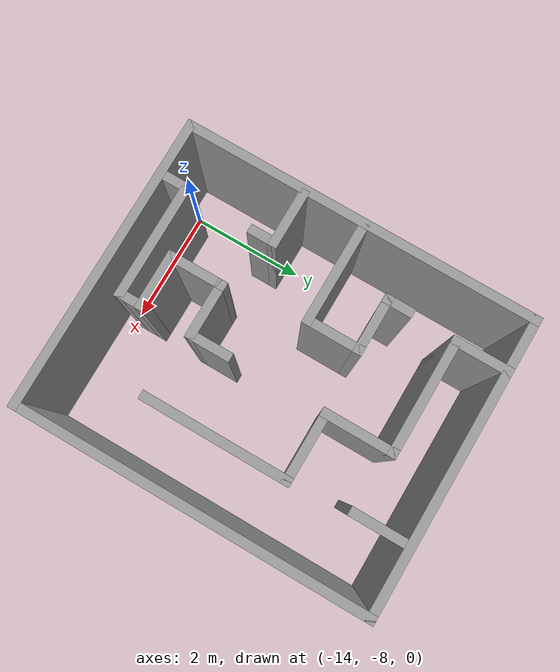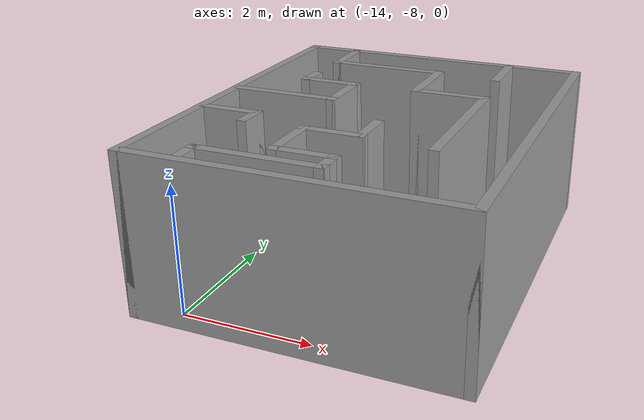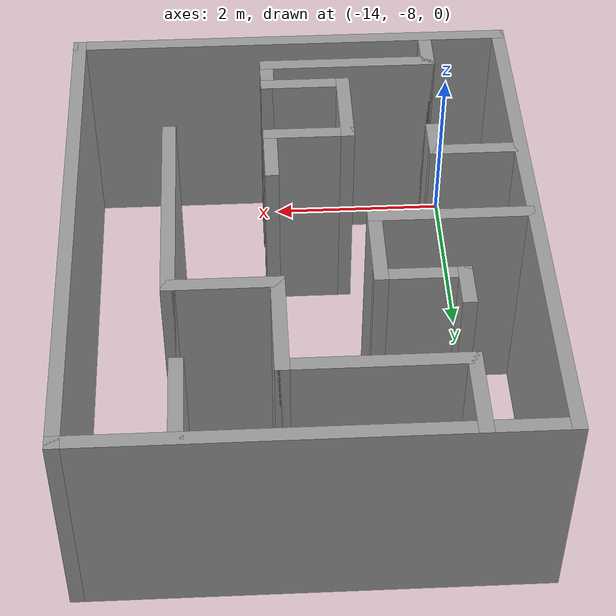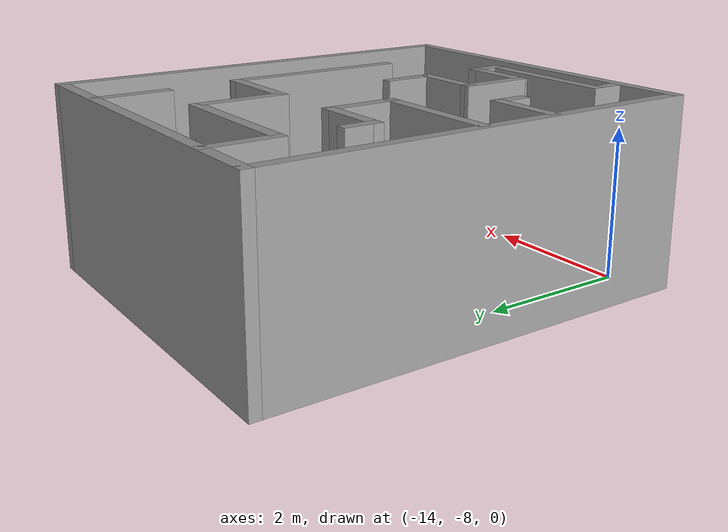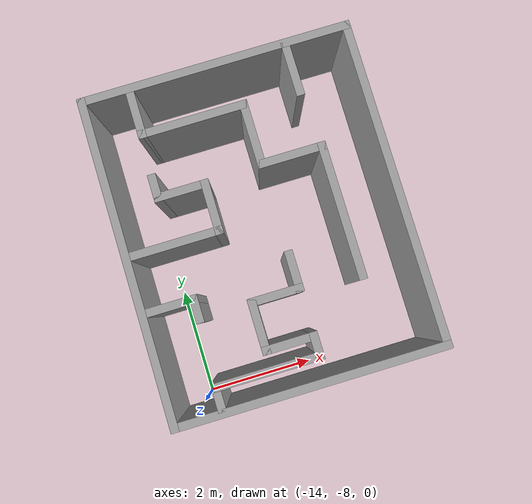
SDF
<?xml version='1.0'?>
<sdf version='1.6'>
  <model name='building1'>
    <pose frame=''>-12.175 -5.325 0 0 -0 0</pose>
    <link name='Wall_0'>
      <collision name='Wall_0_Collision'>
        <geometry>
          <box>
            <size>6 0.15 2.5</size>
          </box>
        </geometry>
        <pose frame=''>0 0 1.25 0 -0 0</pose>
      </collision>
      <visual name='Wall_0_Visual'>
        <pose frame=''>0 0 1.25 0 -0 0</pose>
        <geometry>
          <box>
            <size>6 0.15 2.5</size>
          </box>
        </geometry>
        <material>
          <script>
            <uri>file://media/materials/scripts/gazebo.material</uri>
            <name>Gazebo/Grey</name>
          </script>
          <ambient>1 1 1 1</ambient>
        </material>
        <meta>
          <layer>0</layer>
        </meta>
      </visual>
      <pose frame=''>-2.425 0 0 0 0 -1.5708</pose>
    </link>
    <link name='Wall_1'>
      <collision name='Wall_1_Collision'>
        <geometry>
          <box>
            <size>5 0.15 2.5</size>
          </box>
        </geometry>
        <pose frame=''>0 0 1.25 0 -0 0</pose>
      </collision>
      <visual name='Wall_1_Visual'>
        <pose frame=''>0 0 1.25 0 -0 0</pose>
        <geometry>
          <box>
            <size>5 0.15 2.5</size>
          </box>
        </geometry>
        <material>
          <script>
            <uri>file://media/materials/scripts/gazebo.material</uri>
            <name>Gazebo/Grey</name>
          </script>
          <ambient>1 1 1 1</ambient>
        </material>
        <meta>
          <layer>0</layer>
        </meta>
      </visual>
      <pose frame=''>0 -2.925 0 0 -0 0</pose>
    </link>
    <link name='Wall_16'>
      <collision name='Wall_16_Collision'>
        <geometry>
          <box>
            <size>0.5 0.15 2.5</size>
          </box>
        </geometry>
        <pose frame=''>0 0 1.25 0 -0 0</pose>
      </collision>
      <visual name='Wall_16_Visual'>
        <pose frame=''>0 0 1.25 0 -0 0</pose>
        <geometry>
          <box>
            <size>0.5 0.15 2.5</size>
          </box>
        </geometry>
        <material>
          <script>
            <uri>file://media/materials/scripts/gazebo.material</uri>
            <name>Gazebo/Grey</name>
          </script>
          <ambient>1 1 1 1</ambient>
        </material>
        <meta>
          <layer>0</layer>
        </meta>
      </visual>
      <pose frame=''>-1.565 -2.65 0 0 0 -1.5708</pose>
    </link>
    <link name='Wall_18'>
      <collision name='Wall_18_Collision'>
        <geometry>
          <box>
            <size>1.25 0.15 2.5</size>
          </box>
        </geometry>
        <pose frame=''>0 0 1.25 0 -0 0</pose>
      </collision>
      <visual name='Wall_18_Visual'>
        <pose frame=''>0 0 1.25 0 -0 0</pose>
        <geometry>
          <box>
            <size>1.25 0.15 2.5</size>
          </box>
        </geometry>
        <material>
          <script>
            <uri>file://media/materials/scripts/gazebo.material</uri>
            <name>Gazebo/Grey</name>
          </script>
          <ambient>1 1 1 1</ambient>
        </material>
        <meta>
          <layer>0</layer>
        </meta>
      </visual>
      <pose frame=''>0.285 1.525 0 0 0 -1.5708</pose>
    </link>
    <link name='Wall_19'>
      <collision name='Wall_19_Collision'>
        <geometry>
          <box>
            <size>1.25 0.15 2.5</size>
          </box>
        </geometry>
        <pose frame=''>0 0 1.25 0 -0 0</pose>
      </collision>
      <visual name='Wall_19_Visual'>
        <pose frame=''>0 0 1.25 0 -0 0</pose>
        <geometry>
          <box>
            <size>1.25 0.15 2.5</size>
          </box>
        </geometry>
        <material>
          <script>
            <uri>file://media/materials/scripts/gazebo.material</uri>
            <name>Gazebo/Grey</name>
          </script>
          <ambient>1 1 1 1</ambient>
        </material>
        <meta>
          <layer>0</layer>
        </meta>
      </visual>
      <pose frame=''>0.835 0.975 0 0 -0 0</pose>
    </link>
    <link name='Wall_2'>
      <collision name='Wall_2_Collision'>
        <geometry>
          <box>
            <size>6 0.15 2.5</size>
          </box>
        </geometry>
        <pose frame=''>0 0 1.25 0 -0 0</pose>
      </collision>
      <visual name='Wall_2_Visual'>
        <pose frame=''>0 0 1.25 0 -0 0</pose>
        <geometry>
          <box>
            <size>6 0.15 2.5</size>
          </box>
        </geometry>
        <material>
          <script>
            <uri>file://media/materials/scripts/gazebo.material</uri>
            <name>Gazebo/Grey</name>
          </script>
          <ambient>1 1 1 1</ambient>
        </material>
        <meta>
          <layer>0</layer>
        </meta>
      </visual>
      <pose frame=''>2.425 0 0 0 -0 1.5708</pose>
    </link>
    <link name='Wall_20'>
      <collision name='Wall_20_Collision'>
        <geometry>
          <box>
            <size>2.5 0.15 2.5</size>
          </box>
        </geometry>
        <pose frame=''>0 0 1.25 0 -0 0</pose>
      </collision>
      <visual name='Wall_20_Visual'>
        <pose frame=''>0 0 1.25 0 -0 0</pose>
        <geometry>
          <box>
            <size>2.5 0.15 2.5</size>
          </box>
        </geometry>
        <material>
          <script>
            <uri>file://media/materials/scripts/gazebo.material</uri>
            <name>Gazebo/Grey</name>
          </script>
          <ambient>1 1 1 1</ambient>
        </material>
        <meta>
          <layer>0</layer>
        </meta>
      </visual>
      <pose frame=''>1.385 -0.2 0 0 0 -1.5708</pose>
    </link>
    <link name='Wall_22'>
      <collision name='Wall_22_Collision'>
        <geometry>
          <box>
            <size>1.75 0.15 2.5</size>
          </box>
        </geometry>
        <pose frame=''>0 0 1.25 0 -0 0</pose>
      </collision>
      <visual name='Wall_22_Visual'>
        <pose frame=''>0 0 1.25 0 -0 0</pose>
        <geometry>
          <box>
            <size>1.75 0.15 2.5</size>
          </box>
        </geometry>
        <material>
          <script>
            <uri>file://media/materials/scripts/gazebo.material</uri>
            <name>Gazebo/Grey</name>
          </script>
          <ambient>1 1 1 1</ambient>
        </material>
        <meta>
          <layer>0</layer>
        </meta>
      </visual>
      <pose frame=''>-1.555 0.075 0 0 -0 0</pose>
    </link>
    <link name='Wall_23'>
      <collision name='Wall_23_Collision'>
        <geometry>
          <box>
            <size>1 0.15 2.5</size>
          </box>
        </geometry>
        <pose frame=''>0 0 1.25 0 -0 0</pose>
      </collision>
      <visual name='Wall_23_Visual'>
        <pose frame=''>0 0 1.25 0 -0 0</pose>
        <geometry>
          <box>
            <size>1 0.15 2.5</size>
          </box>
        </geometry>
        <material>
          <script>
            <uri>file://media/materials/scripts/gazebo.material</uri>
            <name>Gazebo/Grey</name>
          </script>
          <ambient>1 1 1 1</ambient>
        </material>
        <meta>
          <layer>0</layer>
        </meta>
      </visual>
      <pose frame=''>-0.755 0.5 0 0 -0 1.5708</pose>
    </link>
    <link name='Wall_24'>
      <collision name='Wall_24_Collision'>
        <geometry>
          <box>
            <size>1 0.15 2.5</size>
          </box>
        </geometry>
        <pose frame=''>0 0 1.25 0 -0 0</pose>
      </collision>
      <visual name='Wall_24_Visual'>
        <pose frame=''>0 0 1.25 0 -0 0</pose>
        <geometry>
          <box>
            <size>1 0.15 2.5</size>
          </box>
        </geometry>
        <material>
          <script>
            <uri>file://media/materials/scripts/gazebo.material</uri>
            <name>Gazebo/Grey</name>
          </script>
          <ambient>1 1 1 1</ambient>
        </material>
        <meta>
          <layer>0</layer>
        </meta>
      </visual>
      <pose frame=''>-1.18 0.925 0 0 -0 3.14159</pose>
    </link>
    <link name='Wall_25'>
      <collision name='Wall_25_Collision'>
        <geometry>
          <box>
            <size>0.5 0.15 2.5</size>
          </box>
        </geometry>
        <pose frame=''>0 0 1.25 0 -0 0</pose>
      </collision>
      <visual name='Wall_25_Visual'>
        <pose frame=''>0 0 1.25 0 -0 0</pose>
        <geometry>
          <box>
            <size>0.5 0.15 2.5</size>
          </box>
        </geometry>
        <material>
          <script>
            <uri>file://media/materials/scripts/gazebo.material</uri>
            <name>Gazebo/Grey</name>
          </script>
          <ambient>1 1 1 1</ambient>
        </material>
        <meta>
          <layer>0</layer>
        </meta>
      </visual>
      <pose frame=''>-1.605 1.1 0 0 -0 1.5708</pose>
    </link>
    <link name='Wall_27'>
      <collision name='Wall_27_Collision'>
        <geometry>
          <box>
            <size>2 0.15 2.5</size>
          </box>
        </geometry>
        <pose frame=''>0 0 1.25 0 -0 0</pose>
      </collision>
      <visual name='Wall_27_Visual'>
        <pose frame=''>0 0 1.25 0 -0 0</pose>
        <geometry>
          <box>
            <size>2 0.15 2.5</size>
          </box>
        </geometry>
        <material>
          <script>
            <uri>file://media/materials/scripts/gazebo.material</uri>
            <name>Gazebo/Grey</name>
          </script>
          <ambient>1 1 1 1</ambient>
        </material>
        <meta>
          <layer>0</layer>
        </meta>
      </visual>
      <pose frame=''>-0.639999 -2.475 0 0 -0 0</pose>
    </link>
    <link name='Wall_28'>
      <collision name='Wall_28_Collision'>
        <geometry>
          <box>
            <size>0.5 0.15 2.5</size>
          </box>
        </geometry>
        <pose frame=''>0 0 1.25 0 -0 0</pose>
      </collision>
      <visual name='Wall_28_Visual'>
        <pose frame=''>0 0 1.25 0 -0 0</pose>
        <geometry>
          <box>
            <size>0.5 0.15 2.5</size>
          </box>
        </geometry>
        <material>
          <script>
            <uri>file://media/materials/scripts/gazebo.material</uri>
            <name>Gazebo/Grey</name>
          </script>
          <ambient>1 1 1 1</ambient>
        </material>
        <meta>
          <layer>0</layer>
        </meta>
      </visual>
      <pose frame=''>0.285 -2.3 0 0 -0 1.5708</pose>
    </link>
    <link name='Wall_29'>
      <collision name='Wall_29_Collision'>
        <geometry>
          <box>
            <size>1 0.15 2.5</size>
          </box>
        </geometry>
        <pose frame=''>0 0 1.25 0 -0 0</pose>
      </collision>
      <visual name='Wall_29_Visual'>
        <pose frame=''>0 0 1.25 0 -0 0</pose>
        <geometry>
          <box>
            <size>1 0.15 2.5</size>
          </box>
        </geometry>
        <material>
          <script>
            <uri>file://media/materials/scripts/gazebo.material</uri>
            <name>Gazebo/Grey</name>
          </script>
          <ambient>1 1 1 1</ambient>
        </material>
        <meta>
          <layer>0</layer>
        </meta>
      </visual>
      <pose frame=''>-0.139999 -2.125 0 0 -0 3.14159</pose>
    </link>
    <link name='Wall_3'>
      <collision name='Wall_3_Collision'>
        <geometry>
          <box>
            <size>5 0.15 2.5</size>
          </box>
        </geometry>
        <pose frame=''>0 0 1.25 0 -0 0</pose>
      </collision>
      <visual name='Wall_3_Visual'>
        <pose frame=''>0 0 1.25 0 -0 0</pose>
        <geometry>
          <box>
            <size>5 0.15 2.5</size>
          </box>
        </geometry>
        <material>
          <script>
            <uri>file://media/materials/scripts/gazebo.material</uri>
            <name>Gazebo/Grey</name>
          </script>
          <ambient>1 1 1 1</ambient>
        </material>
        <meta>
          <layer>0</layer>
        </meta>
      </visual>
      <pose frame=''>0 2.925 0 0 -0 3.14159</pose>
    </link>
    <link name='Wall_30'>
      <collision name='Wall_30_Collision'>
        <geometry>
          <box>
            <size>1 0.15 2.5</size>
          </box>
        </geometry>
        <pose frame=''>0 0 1.25 0 -0 0</pose>
      </collision>
      <visual name='Wall_30_Visual'>
        <pose frame=''>0 0 1.25 0 -0 0</pose>
        <geometry>
          <box>
            <size>1 0.15 2.5</size>
          </box>
        </geometry>
        <material>
          <script>
            <uri>file://media/materials/scripts/gazebo.material</uri>
            <name>Gazebo/Grey</name>
          </script>
          <ambient>1 1 1 1</ambient>
        </material>
        <meta>
          <layer>0</layer>
        </meta>
      </visual>
      <pose frame=''>-0.565 -1.7 0 0 -0 1.5708</pose>
    </link>
    <link name='Wall_31'>
      <collision name='Wall_31_Collision'>
        <geometry>
          <box>
            <size>1 0.15 2.5</size>
          </box>
        </geometry>
        <pose frame=''>0 0 1.25 0 -0 0</pose>
      </collision>
      <visual name='Wall_31_Visual'>
        <pose frame=''>0 0 1.25 0 -0 0</pose>
        <geometry>
          <box>
            <size>1 0.15 2.5</size>
          </box>
        </geometry>
        <material>
          <script>
            <uri>file://media/materials/scripts/gazebo.material</uri>
            <name>Gazebo/Grey</name>
          </script>
          <ambient>1 1 1 1</ambient>
        </material>
        <meta>
          <layer>0</layer>
        </meta>
      </visual>
      <pose frame=''>-0.139999 -1.275 0 0 -0 0</pose>
    </link>
    <link name='Wall_32'>
      <collision name='Wall_32_Collision'>
        <geometry>
          <box>
            <size>0.75 0.15 2.5</size>
          </box>
        </geometry>
        <pose frame=''>0 0 1.25 0 -0 0</pose>
      </collision>
      <visual name='Wall_32_Visual'>
        <pose frame=''>0 0 1.25 0 -0 0</pose>
        <geometry>
          <box>
            <size>0.75 0.15 2.5</size>
          </box>
        </geometry>
        <material>
          <script>
            <uri>file://media/materials/scripts/gazebo.material</uri>
            <name>Gazebo/Grey</name>
          </script>
          <ambient>1 1 1 1</ambient>
        </material>
        <meta>
          <layer>0</layer>
        </meta>
      </visual>
      <pose frame=''>0.285 -0.975 0 0 -0 1.5708</pose>
    </link>
    <link name='Wall_34'>
      <collision name='Wall_34_Collision'>
        <geometry>
          <box>
            <size>1 0.15 2.5</size>
          </box>
        </geometry>
        <pose frame=''>0 0 1.25 0 -0 0</pose>
      </collision>
      <visual name='Wall_34_Visual'>
        <pose frame=''>0 0 1.25 0 -0 0</pose>
        <geometry>
          <box>
            <size>1 0.15 2.5</size>
          </box>
        </geometry>
        <material>
          <script>
            <uri>file://media/materials/scripts/gazebo.material</uri>
            <name>Gazebo/Grey</name>
          </script>
          <ambient>1 1 1 1</ambient>
        </material>
        <meta>
          <layer>0</layer>
        </meta>
      </visual>
      <pose frame=''>-1.93 -0.935 0 0 -0 0</pose>
    </link>
    <link name='Wall_35'>
      <collision name='Wall_35_Collision'>
        <geometry>
          <box>
            <size>0.5 0.15 2.5</size>
          </box>
        </geometry>
        <pose frame=''>0 0 1.25 0 -0 0</pose>
      </collision>
      <visual name='Wall_35_Visual'>
        <pose frame=''>0 0 1.25 0 -0 0</pose>
        <geometry>
          <box>
            <size>0.5 0.15 2.5</size>
          </box>
        </geometry>
        <material>
          <script>
            <uri>file://media/materials/scripts/gazebo.material</uri>
            <name>Gazebo/Grey</name>
          </script>
          <ambient>1 1 1 1</ambient>
        </material>
        <meta>
          <layer>0</layer>
        </meta>
      </visual>
      <pose frame=''>-1.505 -1.11 0 0 0 -1.5708</pose>
    </link>
    <link name='Wall_37'>
      <collision name='Wall_37_Collision'>
        <geometry>
          <box>
            <size>1 0.15 2.5</size>
          </box>
        </geometry>
        <pose frame=''>0 0 1.25 0 -0 0</pose>
      </collision>
      <visual name='Wall_37_Visual'>
        <pose frame=''>0 0 1.25 0 -0 0</pose>
        <geometry>
          <box>
            <size>1 0.15 2.5</size>
          </box>
        </geometry>
        <material>
          <script>
            <uri>file://media/materials/scripts/gazebo.material</uri>
            <name>Gazebo/Grey</name>
          </script>
          <ambient>1 1 1 1</ambient>
        </material>
        <meta>
          <layer>0</layer>
        </meta>
      </visual>
      <pose frame=''>1.295 2.44 0 0 0 -1.5708</pose>
    </link>
    <link name='Wall_6'>
      <collision name='Wall_6_Collision'>
        <geometry>
          <box>
            <size>1 0.15 2.5</size>
          </box>
        </geometry>
        <pose frame=''>0 0 1.25 0 -0 0</pose>
      </collision>
      <visual name='Wall_6_Visual'>
        <pose frame=''>0 0 1.25 0 -0 0</pose>
        <geometry>
          <box>
            <size>1 0.15 2.5</size>
          </box>
        </geometry>
        <material>
          <script>
            <uri>file://media/materials/scripts/gazebo.material</uri>
            <name>Gazebo/Grey</name>
          </script>
          <ambient>1 1 1 1</ambient>
        </material>
        <meta>
          <layer>0</layer>
        </meta>
      </visual>
      <pose frame=''>-1.565 2.5 0 0 0 -1.5708</pose>
    </link>
    <link name='Wall_7'>
      <collision name='Wall_7_Collision'>
        <geometry>
          <box>
            <size>2 0.15 2.5</size>
          </box>
        </geometry>
        <pose frame=''>0 0 1.25 0 -0 0</pose>
      </collision>
      <visual name='Wall_7_Visual'>
        <pose frame=''>0 0 1.25 0 -0 0</pose>
        <geometry>
          <box>
            <size>2 0.15 2.5</size>
          </box>
        </geometry>
        <material>
          <script>
            <uri>file://media/materials/scripts/gazebo.material</uri>
            <name>Gazebo/Grey</name>
          </script>
          <ambient>1 1 1 1</ambient>
        </material>
        <meta>
          <layer>0</layer>
        </meta>
      </visual>
      <pose frame=''>-0.639999 2.075 0 0 -0 0</pose>
    </link>
    <static>1</static>
  </model>
</sdf>
